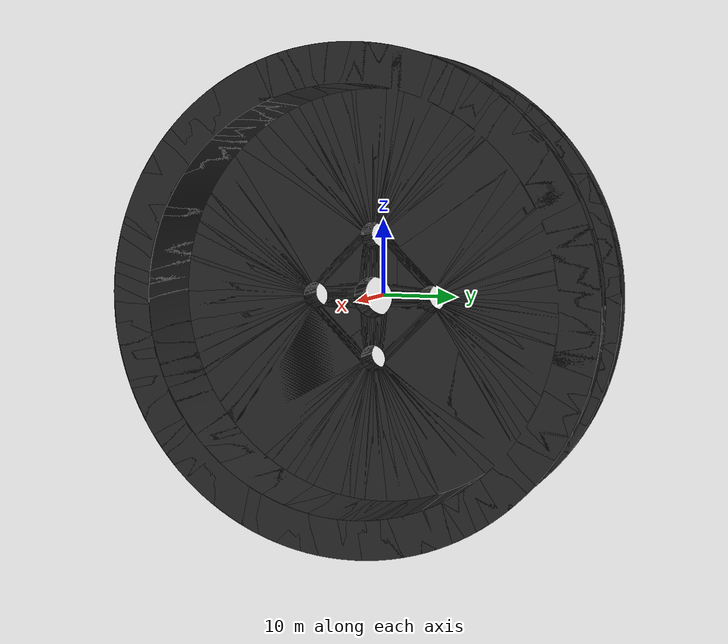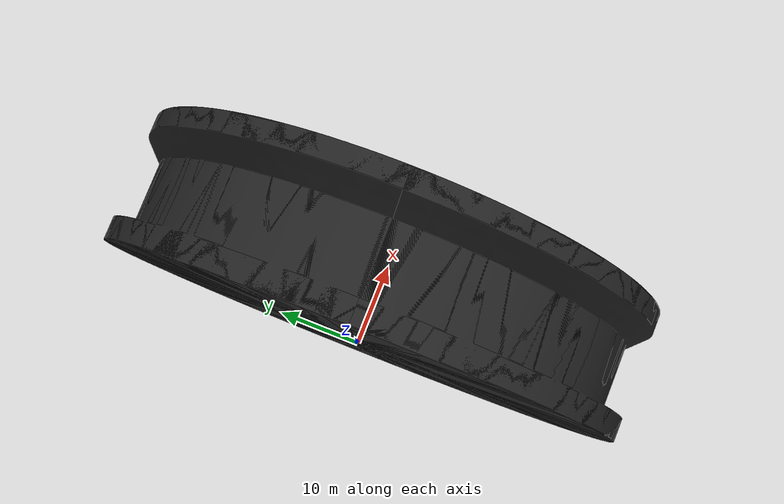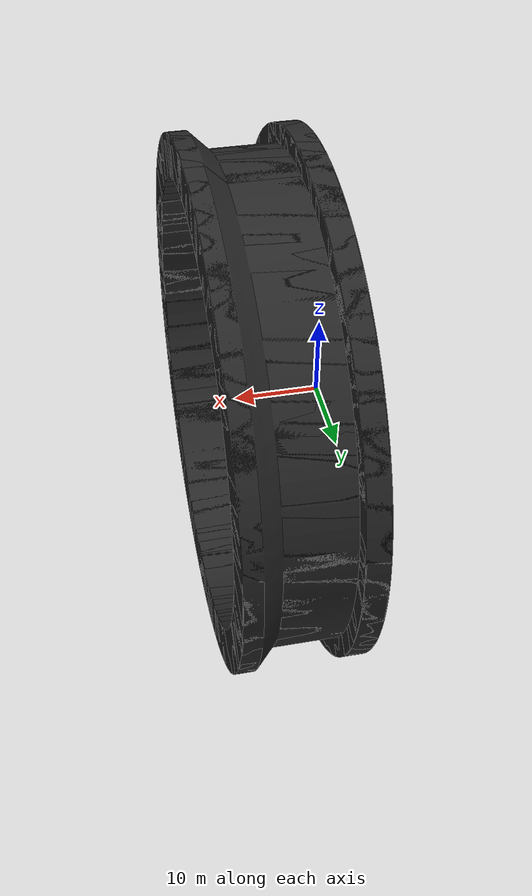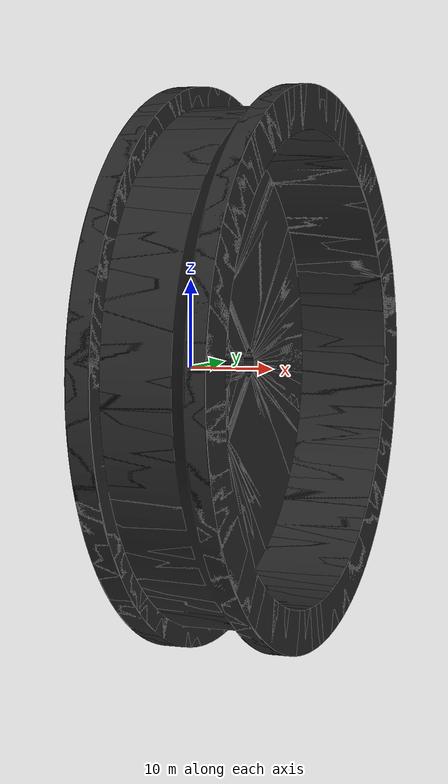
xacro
<?xml version="1.0"?>
<robot name="unicomini" xmlns:xacro="http://www.ros.org/wiki/xacro">

  <!-- Robot constants and properties -->
  <xacro:include filename="$(find unico_description)/urdf/unicomini/unicomini_properties.urdf.xacro" />
  <!-- Import Rviz colors -->
  <xacro:include filename="$(find unico_description)/urdf/materials.xacro" />

  <xacro:macro name="wheel" params="prefix *joint_pose">

    <link name="${prefix}_wheel_link">
      <visual>
        <origin xyz="0 0 0" rpy="${PI/2} 0 0"/>
        <geometry>
          <mesh filename="package://unico_description/meshes/unicomini/unicomini-wheel.stl"/>
        </geometry>
        <material name="black" />
      </visual>
      <collision>
        <origin xyz="0 0 0" rpy="${PI/2} 0 0"/>
        <geometry>
          <cylinder radius="${wheel_radius}" length="${wheel_width}"/>
        </geometry>
      </collision>
      <inertial>
        <origin xyz="0 0 0" rpy="0 0 0"/>
        <mass value="0.477"/>
        <inertia
          ixx="0.0013" ixy="0" ixz="0"
          iyy="0.0024" iyz="0"
          izz="0.0013"/>
      </inertial>
    </link>

    <gazebo reference="${prefix}_wheel_link">
      <material>Gazebo/DarkGrey</material>
      <selfCollide>false</selfCollide>
      <mu1 value="0.5"/>
      <mu2 value="0.5"/>
      <kp value="10000000.0" />
      <kd value="1" />
      <fdir1 value="1 0 0"/>
    </gazebo>

    <joint name="${prefix}_wheel" type="continuous">
      <parent link="chassis_link"/>
      <child link="${prefix}_wheel_link" />
      <xacro:insert_block name="joint_pose" />
      <axis xyz="0 1 0" />
    </joint>

    <!-- unicomini has only two motors, one per side. However its better for Gazebo to simulate as if there's an actuator per wheel. -->
    <transmission name="${prefix}_wheel_trans">
      <type>transmission_interface/SimpleTransmission</type>
      <joint name="${prefix}_wheel">
        <hardwareInterface>hardware_interface/VelocityJointInterface</hardwareInterface>
      </joint>
      <actuator name="${prefix}_actuator">
        <mechanicalReduction>1</mechanicalReduction>
      </actuator>
    </transmission>
  </xacro:macro>

  <xacro:wheel prefix="front_left">
    <origin xyz="${wheelbase/2} ${track/2} ${wheel_vertical_offset}" rpy="0 0 0" />
  </xacro:wheel>
  <xacro:wheel prefix="front_right">
    <origin xyz="${wheelbase/2} ${-track/2} ${wheel_vertical_offset}" rpy="0 0 0" />
  </xacro:wheel>
  <xacro:wheel prefix="rear_left">
    <origin xyz="${-wheelbase/2} ${track/2} ${wheel_vertical_offset}" rpy="0 0 0" />
  </xacro:wheel>
  <xacro:wheel prefix="rear_right">
    <origin xyz="${-wheelbase/2} ${-track/2} ${wheel_vertical_offset}" rpy="0 0 0" />
  </xacro:wheel>

  <link name="base_link"></link>

  <joint name="base_link_joint" type="fixed">
    <origin xyz="0 0 0" rpy="0 0 0" />
    <parent link="base_link"/>
    <child link="chassis_link" />
  </joint>

  <link name="chassis_link">
    <visual>
      <origin xyz="0 0 ${footprint_vertical_offset}" rpy="0 0 0" />
      <geometry>
        <mesh filename="package://unico_description/meshes/unicomini/unicomini-base.stl" scale="0.001 0.001 0.001"/>
      </geometry>
      <material name="orange" />
    </visual>
    <collision>
      <origin xyz="0 0 ${chassis_height/2}"/>
      <geometry>
        <box size="${chassis_length} ${chassis_width} ${chassis_height}"/>
      </geometry>
    </collision>
    <inertial>
      <!-- Center of mass -->
      <origin xyz="0.012  0.002 0.067" rpy="0 0 0"/>
      <mass value="16.523"/>
      <!-- Moments of inertia: ( chassis without wheels ) -->
      <inertia
        ixx="0.3136" ixy="-0.0008" ixz="0.0164"
        iyy="0.3922" iyz="-0.0009"
        izz="0.4485"/>
      </inertial>
  </link>

  <link name="base_laser_link"></link>

  <joint name="base_laser_link_joint" type="fixed">
    <origin xyz="0 0 0.1" rpy="0 0 -1.57" />
    <parent link="base_link"/>
    <child link="base_laser_link" />
  </joint>
  <!-- Bring in simulation data for Gazebo. -->
  <xacro:include filename="$(find unico_description)/urdf/unicomini/unicomini.gazebo" />

</robot>

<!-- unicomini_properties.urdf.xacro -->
<robot xmlns:xacro="http://www.ros.org/wiki/xacro">

  <xacro:property name="PI" value="3.1415926535897931" />

  <!-- wheelbase = distance between wheel axis (x-direction)
       example: distance between wheel_front_right and wheel_rear_right-->
  <xacro:property name="wheelbase" value="0.090" />
  <!-- track = distance between wheels (y-direction)
       example: distance between wheel_front_right and wheel_front_left -->
  <xacro:property name="track" value="0.112" />
  <!-- vertical offset means height -->
  <xacro:property name="wheel_vertical_offset" value="0.044" />
  <xacro:property name="footprint_vertical_offset" value="-0.0655" />

  <xacro:property name="wheel_radius" value="0.035" />
  <xacro:property name="wheel_width" value="0.015" />

  <xacro:property name="chassis_length" value="0.200" />
  <xacro:property name="chassis_width" value="0.130" />
  <xacro:property name="chassis_height" value="0.150" />

  <xacro:property name="dummy_inertia" value="1e-09"/>

  <xacro:property name="mount_spacing" value="0.120" />

</robot>

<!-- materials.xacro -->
<robot>
  <material name="dark_grey"><color rgba="0.2 0.2 0.2 1.0" /></material>
  <material name="light_grey"><color rgba="0.4 0.4 0.4 1.0" /></material>
  <material name="yellow"><color rgba="0.8 0.8 0.0 1.0" /></material>
  <material name="black"><color rgba="0.15 0.15 0.15 1.0" /></material>
  <material name="green"><color rgba="0.25 0.75 0.25 1.0" /></material>
  <material name="orange"><color rgba="0.92 0.33 0.02 1.0" /></material>
</robot>
